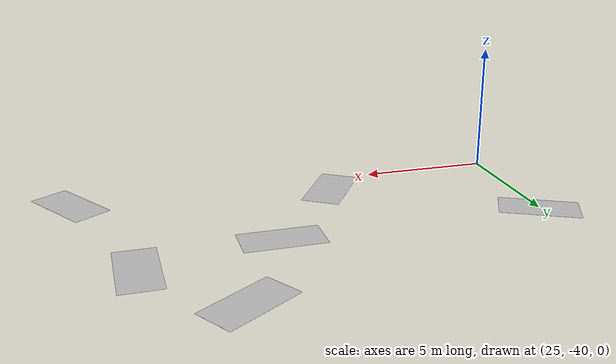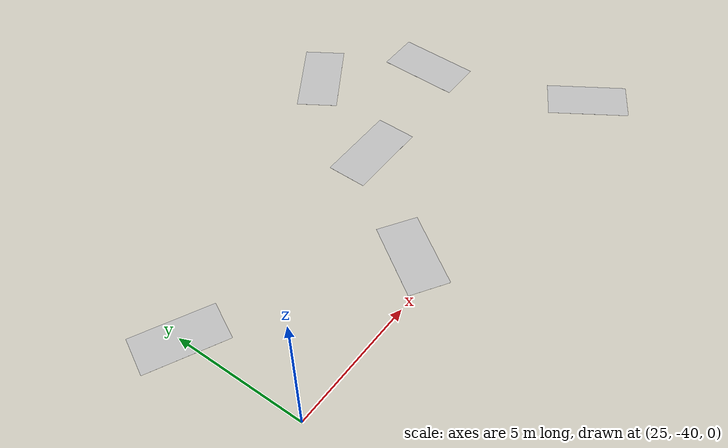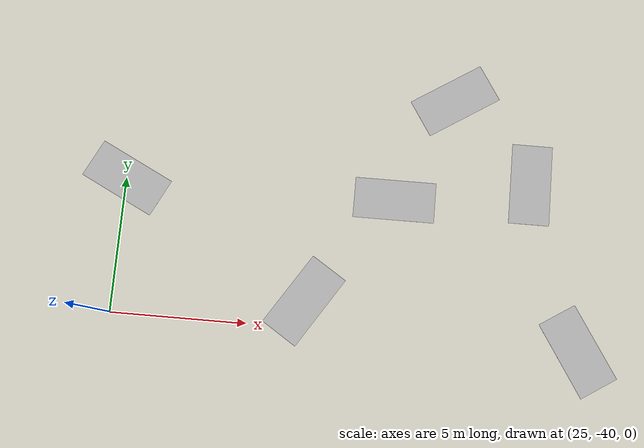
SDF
<sdf version="1.5">
 <world name="default">
  <include><uri>model://face1</uri><pose>35 -35 0 0 0 -1.57</pose></include>
  <include><uri>model://face2</uri><pose>42 -40 0 0 0 0.57</pose></include>
  <include><uri>model://face3</uri><pose>32 -39 0 0 0 2.57</pose></include>
  <include><uri>model://face4</uri><pose>40 -34 0 0 0 0</pose></include>
  <include><uri>model://face5</uri><pose>25 -35 0 0 0 1.11</pose></include>
  <include><uri>model://face6</uri><pose>37 -31 0 0 0 -1.0</pose></include>
  <scene>
   <shadows>0</shadows>
   <ambient>0.01 0.01 0.01 1.0</ambient>
   <sky><clouds><speed>12</speed></clouds></sky>
  </scene>
  <include><uri>model://sun</uri></include>
  <physics name="default_physics" default="0" type="ode">
   <gravity>0 0 -9.8066</gravity>
   <ode>
    <solver>
     <type>quick</type>
     <iters>10</iters>
     <sor>1.3</sor>
     <use_dynamic_moi_rescaling>0</use_dynamic_moi_rescaling>
    </solver>
    <constraints>
     <cfm>0</cfm>
     <erp>0.2</erp>
     <contact_max_correcting_vel>100</contact_max_correcting_vel>
     <contact_surface_layer>0.001</contact_surface_layer>
    </constraints>
   </ode>
   <max_step_size>0.004</max_step_size>
   <real_time_factor>1</real_time_factor>
   <real_time_update_rate>250</real_time_update_rate>
   <magnetic_field>6.0e-6 2.3e-5 -4.2e-5</magnetic_field>
  </physics>
 </world>
</sdf>

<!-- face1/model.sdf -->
<sdf version='1.4'>
  <model name='face1'>
    <static>true</static>
    <link name='link'>
      <collision name='collision'>
        <geometry>
          <plane>
            <normal>0 0 1</normal>
            <size>1 1</size>
          </plane>
        </geometry>
        <surface>
          <friction>
            <ode>
              <mu>0.5</mu>
              <mu2>.5</mu2>
            </ode>
          </friction>
        </surface>
      </collision>

      <visual name='visual_0'>
        <pose>0 0 0 0 0 0</pose>

        <cast_shadows>false</cast_shadows>
        <geometry>
          <plane>
            <normal>0 0 1</normal>
            <size>1.5 3</size>
          </plane>
        </geometry>
        <material>
          <script>
            <uri>model://face1/materials/scripts</uri>
            <uri>model://face1/materials/textures</uri>
            <name>vrc/face1</name>
          </script>
        </material>
      </visual>
    </link>
  </model>
</sdf>

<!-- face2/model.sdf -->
<sdf version='1.4'>
  <model name='face2'>
    <static>true</static>
    <link name='link'>
      <collision name='collision'>
        <geometry>
          <plane>
            <normal>0 0 1</normal>
            <size>1 1</size>
          </plane>
        </geometry>
        <surface>
          <friction>
            <ode>
              <mu>0.5</mu>
              <mu2>.5</mu2>
            </ode>
          </friction>
        </surface>
      </collision>

      <visual name='visual_0'>
        <pose>0 0 0 0 0 0</pose>

        <cast_shadows>false</cast_shadows>
        <geometry>
          <plane>
            <normal>0 0 1</normal>
            <size>1.5 3</size>
          </plane>
        </geometry>
        <material>
          <script>
            <uri>model://face2/materials/scripts</uri>
            <uri>model://face2/materials/textures</uri>
            <name>vrc/face2</name>
          </script>
        </material>
      </visual>
    </link>
  </model>
</sdf>

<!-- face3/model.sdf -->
<sdf version='1.4'>
  <model name='face3'>
    <static>true</static>
    <link name='link'>
      <collision name='collision'>
        <geometry>
          <plane>
            <normal>0 0 1</normal>
            <size>1 1</size>
          </plane>
        </geometry>
        <surface>
          <friction>
            <ode>
              <mu>0.5</mu>
              <mu2>.5</mu2>
            </ode>
          </friction>
        </surface>
      </collision>

      <visual name='visual_0'>
        <pose>0 0 0 0 0 0</pose>

        <cast_shadows>false</cast_shadows>
        <geometry>
          <plane>
            <normal>0 0 1</normal>
            <size>1.5 3</size>
          </plane>
        </geometry>
        <material>
          <script>
            <uri>model://face3/materials/scripts</uri>
            <uri>model://face3/materials/textures</uri>
            <name>vrc/face3</name>
          </script>
        </material>
      </visual>
    </link>
  </model>
</sdf>

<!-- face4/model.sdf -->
<sdf version='1.4'>
  <model name='face4'>
    <static>true</static>
    <link name='link'>
      <collision name='collision'>
        <geometry>
          <plane>
            <normal>0 0 1</normal>
            <size>1 1</size>
          </plane>
        </geometry>
        <surface>
          <friction>
            <ode>
              <mu>0.5</mu>
              <mu2>.5</mu2>
            </ode>
          </friction>
        </surface>
      </collision>

      <visual name='visual_0'>
        <pose>0 0 0 0 0 0</pose>

        <cast_shadows>false</cast_shadows>
        <geometry>
          <plane>
            <normal>0 0 1</normal>
            <size>1.5 3</size>
          </plane>
        </geometry>
        <material>
          <script>
            <uri>model://face4/materials/scripts</uri>
            <uri>model://face4/materials/textures</uri>
            <name>vrc/face4</name>
          </script>
        </material>
      </visual>
    </link>
  </model>
</sdf>

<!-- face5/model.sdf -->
<sdf version='1.4'>
  <model name='face5'>
    <static>true</static>
    <link name='link'>
      <collision name='collision'>
        <geometry>
          <plane>
            <normal>0 0 1</normal>
            <size>1 1</size>
          </plane>
        </geometry>
        <surface>
          <friction>
            <ode>
              <mu>0.5</mu>
              <mu2>.5</mu2>
            </ode>
          </friction>
        </surface>
      </collision>

      <visual name='visual_0'>
        <pose>0 0 0 0 0 0</pose>

        <cast_shadows>false</cast_shadows>
        <geometry>
          <plane>
            <normal>0 0 1</normal>
            <size>1.5 3</size>
          </plane>
        </geometry>
        <material>
          <script>
            <uri>model://face5/materials/scripts</uri>
            <uri>model://face5/materials/textures</uri>
            <name>vrc/face5</name>
          </script>
        </material>
      </visual>
    </link>
  </model>
</sdf>

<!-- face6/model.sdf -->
<sdf version='1.4'>
  <model name='face6'>
    <static>true</static>
    <link name='link'>
      <collision name='collision'>
        <geometry>
          <plane>
            <normal>0 0 1</normal>
            <size>1 1</size>
          </plane>
        </geometry>
        <surface>
          <friction>
            <ode>
              <mu>0.5</mu>
              <mu2>.5</mu2>
            </ode>
          </friction>
        </surface>
      </collision>

      <visual name='visual_0'>
        <pose>0 0 0 0 0 0</pose>

        <cast_shadows>false</cast_shadows>
        <geometry>
          <plane>
            <normal>0 0 1</normal>
            <size>1.5 3</size>
          </plane>
        </geometry>
        <material>
          <script>
            <uri>model://face6/materials/scripts</uri>
            <uri>model://face6/materials/textures</uri>
            <name>vrc/face6</name>
          </script>
        </material>
      </visual>
    </link>
  </model>
</sdf>
